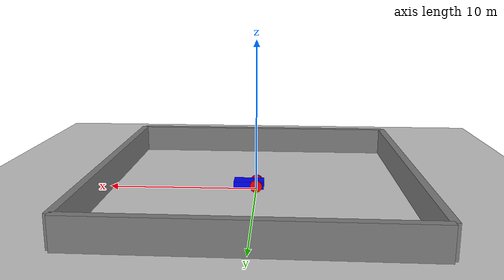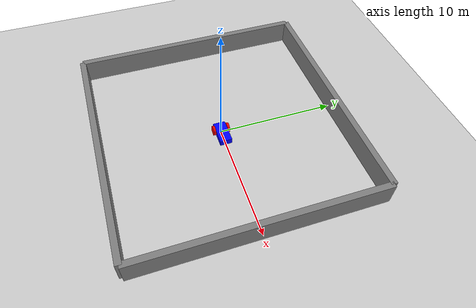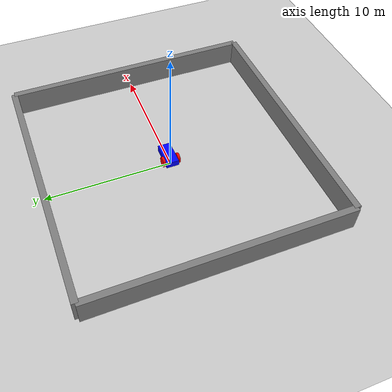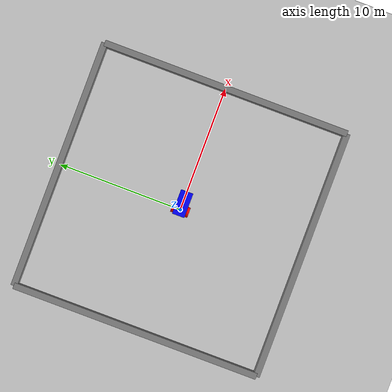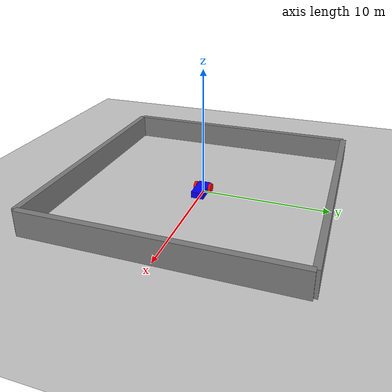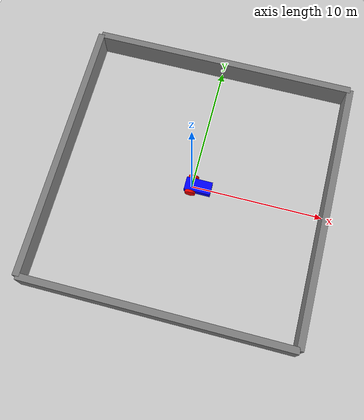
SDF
<?xml version="1.0" ?>
<sdf version="1.8">
    <!-- Define the world environment -->
    <world name="rover_world">
        <!-- Define the world's gravity -->
        <gravity>0 0 -9.81</gravity>

        <!-- Physics settings for the simulation -->
        <physics name="1ms" type="ignored">
            <max_step_size>0.001</max_step_size> <!-- Simulation step size -->
            <real_time_factor>1.0</real_time_factor> <!-- Speed relative to real-time -->
        </physics>

        <!-- Plugins to extend Gazebo functionalities -->
        <!-- Default physics engine -->
        <plugin
            filename="libignition-gazebo-physics-system.so"
            name="ignition::gazebo::systems::Physics">
        </plugin>
        <!-- User commands for controlling the simulation -->
        <plugin
            filename="libignition-gazebo-user-commands-system.so"
            name="ignition::gazebo::systems::UserCommands">
        </plugin>
        <!-- Broadcasts the scene to GUI clients -->
        <plugin
            filename="libignition-gazebo-scene-broadcaster-system.so"
            name="ignition::gazebo::systems::SceneBroadcaster">
        </plugin>

        <!-- Define a directional light (e.g., sun) -->
        <light type="directional" name="sun">
            <!-- Enable shadow casting -->
            <cast_shadows>true</cast_shadows>
            <!-- Position in the world -->
            <pose>0 0 10 0 0 0</pose>
            <!-- Light direction (mostly downward) -->
            <direction>-0.5 0.1 -0.9</direction>
            <!-- Diffuse (i.e., scattered) light -->
            <!-- Fully opaque light gray -->
            <diffuse>0.8 0.8 0.8 1</diffuse>
            <!-- Shiny highlights on reflective surfaces -->
            <!-- Fully opaque dark gray -->
            <specular>0.2 0.2 0.2 1</specular>
            <!-- Attenuation over distance -->
            <attenuation>
                <!-- Max distance light travels -->
                <range>1000</range>
                <!-- Quadratic fun of distance -->
                <!-- Light = 1 / (C + L * d + Q * d^2) -->
                <constant>0.9</constant>
                <linear>0.01</linear>
                <quadratic>0.001</quadratic>
            </attenuation>
        </light>

        <!-- Define a ground plane -->
        <model name="ground_plane">
            <static>true</static> <!-- The ground does not move -->
            <link name="link">
                <collision name="collision">
                    <geometry>
                        <plane>
                            <!-- Flat horizontal surface -->
                            <normal>0 0 1</normal>
                        </plane>
                    </geometry>
                </collision>
                <visual name="visual">
                    <geometry>
                        <plane>
                            <!-- Flat horizontal surface -->
                            <normal>0 0 1</normal>
                            <!-- Ground size -->
                            <size>100 100</size>
                        </plane>
                    </geometry>
                    <material> <!-- Ground color -->
                        <ambient>0.8 0.8 0.8 1</ambient> <!-- Base color -->
                        <diffuse>0.8 0.8 0.8 1</diffuse>
                        <specular>0.8 0.8 0.8 1</specular>
                    </material>
                </visual>
            </link>
        </model>

        <!-- Define north wall, placed at x = +10 -->
        <model name="north_wall">
            <static>true</static>
            <link name="link">
                <collision name="collision">
                    <geometry>
                        <box>
                            <size>20 0.5 2</size> <!-- Width, Depth, Height -->
                        </box>
                    </geometry>
                </collision>
                <visual name="visual">
                    <geometry>
                        <box>
                            <size>20 0.5 2</size>
                        </box>
                    </geometry>
                    <material>
                        <ambient>0.5 0.5 0.5 1</ambient>
                        <diffuse>0.5 0.5 0.5 1</diffuse>
                        <specular>0.5 0.5 0.5 1</specular>
                    </material>
                </visual>
            </link>
            <pose relative_to="world">10 0 1 0 0 1.5708</pose> <!-- Position of the wall -->
        </model>

        <!-- Define south wall, placed at x = -10 -->
        <model name="south_wall">
            <static>true</static>
            <link name="link">
                <collision name="collision">
                    <geometry>
                        <box>
                            <size>20 0.5 2</size> <!-- Width, Depth, Height -->
                        </box>
                    </geometry>
                </collision>
                <visual name="visual">
                    <geometry>
                        <box>
                            <size>20 0.5 2</size>
                        </box>
                    </geometry>
                    <material>
                        <ambient>0.5 0.5 0.5 1</ambient>
                        <diffuse>0.5 0.5 0.5 1</diffuse>
                        <specular>0.5 0.5 0.5 1</specular>
                    </material>
                </visual>
            </link>
            <pose relative_to="world">-10 0 1 0 0 1.5708</pose> <!-- Position of the wall -->
        </model>

        <!-- Define east wall, placed at y = +10 -->
        <model name="east_wall">
            <static>true</static>
            <link name="link">
                <collision name="collision">
                    <geometry>
                        <box>
                            <size>20 0.5 2</size> <!-- Width, Depth, Height -->
                        </box>
                    </geometry>
                </collision>
                <visual name="visual">
                    <geometry>
                        <box>
                            <size>20 0.5 2</size>
                        </box>
                    </geometry>
                    <material>
                        <ambient>0.5 0.5 0.5 1</ambient>
                        <diffuse>0.5 0.5 0.5 1</diffuse>
                        <specular>0.5 0.5 0.5 1</specular>
                    </material>
                </visual>
            </link>
            <pose relative_to="world">0 10 1 0 0 0</pose> <!-- Position of the wall -->
        </model>

        <!-- Define west wall, placed at y = -10 -->
        <model name="west_wall">
            <static>true</static>
            <link name="link">
                <collision name="collision">
                    <geometry>
                        <box>
                            <size>20 0.5 2</size> <!-- Width, Depth, Height -->
                        </box>
                    </geometry>
                </collision>
                <visual name="visual">
                    <geometry>
                        <box>
                            <size>20 0.5 2</size>
                        </box>
                    </geometry>
                    <material>
                        <ambient>0.5 0.5 0.5 1</ambient>
                        <diffuse>0.5 0.5 0.5 1</diffuse>
                        <specular>0.5 0.5 0.5 1</specular>
                    </material>
                </visual>
            </link>
            <pose relative_to="world">0 -10 1 0 0 0</pose> <!-- Position of the wall -->
        </model>

        <!-- Define a simple rover model -->
        <model name='rover_blue' canonical_link='chassis'>
            <!-- Position of the rover in the world -->
            <pose relative_to='world'>0 0 0 0 0 0</pose>

            <!-- Chassis (main body) of the rover -->
            <link name='chassis'>
                <pose relative_to='__model__'>0.5 0 0.4 0 0 0</pose>

                <!-- Inertial properties for physics simulation -->
                <inertial>
                    <mass>1.14395</mass>
                    <inertia>
                        <ixx>0.095329</ixx>
                        <ixy>0</ixy>
                        <ixz>0</ixz>
                        <iyy>0.381317</iyy>
                        <iyz>0</iyz>
                        <izz>0.476646</izz>
                    </inertia>
                </inertial>

                <!-- Visual representation of the chassis -->
                <visual name='visual'>
                    <geometry>
                        <box>
                            <!-- Chassis dimensions -->
                            <size>2.0 1.0 0.5</size>
                        </box>
                    </geometry>
                    <material> <!-- Color of the chassis (Blue) -->
                        <ambient>0.0 0.0 1.0 1</ambient>
                        <diffuse>0.0 0.0 1.0 1</diffuse>
                        <specular>0.0 0.0 1.0 1</specular>
                    </material>
                </visual>

                <!-- Collision properties for physics simulation -->
                <collision name='collision'>
                    <geometry>
                        <box>
                            <!-- Same size as visual -->
                            <size>2.0 1.0 0.5</size>
                        </box>
                    </geometry>
                </collision>
            </link>

            <!-- The left wheel link: -->
            <link name='left_wheel'>
                <!-- Back (-x) and left (+y) position -->
                <!-- The wheel is a cylinder rotated 90 deg
                around the Roll axis -->
                <pose relative_to="chassis">
                    -0.5 0.6 0 -1.5707 0 0</pose>
                <inertial>
                    <mass>1</mass>
                    <inertia>
                        <ixx>0.043333</ixx>
                        <ixy>0</ixy>
                        <ixz>0</ixz>
                        <iyy>0.043333</iyy>
                        <iyz>0</iyz>
                        <izz>0.08</izz>
                    </inertia>
                </inertial>
                <visual name='visual'>
                    <geometry>
                        <cylinder>
                            <radius>0.4</radius>
                            <length>0.2</length>
                        </cylinder>
                    </geometry>
                    <material>
                        <!-- Red -->
                        <ambient>1.0 0.0 0.0 1</ambient>
                        <diffuse>1.0 0.0 0.0 1</diffuse>
                        <specular>1.0 0.0 0.0 1</specular>
                    </material>
                </visual>
                <collision name='collision'>
                <!-- Same as visual -->
                    <geometry>
                        <cylinder>
                            <radius>0.4</radius>
                            <length>0.2</length>
                        </cylinder>
                    </geometry>
                </collision>
            </link>

            <!--The right wheel is the same as the left wheel
            but with different position-->
            <link name='right_wheel'>
                <!-- Back (-x) and right (-y) position -->
                <pose relative_to="chassis"> -0.5 -0.6 0 -1.5707 0 0</pose>
                <inertial>
                    <mass>1</mass>
                    <inertia>
                        <ixx>0.043333</ixx>
                        <ixy>0</ixy>
                        <ixz>0</ixz>
                        <iyy>0.043333</iyy>
                        <iyz>0</iyz>
                        <izz>0.08</izz>
                    </inertia>
                </inertial>
                <visual name='visual'>
                    <geometry>
                        <cylinder>
                            <radius>0.4</radius>
                            <length>0.2</length>
                        </cylinder>
                    </geometry>
                    <material>
                        <ambient>1.0 0.0 0.0 1</ambient>
                        <diffuse>1.0 0.0 0.0 1</diffuse>
                        <specular>1.0 0.0 0.0 1</specular>
                    </material>
                </visual>
                <collision name='collision'>
                    <geometry>
                        <cylinder>
                            <radius>0.4</radius>
                            <length>0.2</length>
                        </cylinder>
                    </geometry>
                </collision>
            </link>

            <!-- For convenience, we define a new frame
            for the caster wheel -->
            <frame name="caster_frame" attached_to='chassis'>
                <!-- Front (+x) and below (-z) -->
                <pose>0.8 0 -0.2 0 0 0</pose>
            </frame>
            <!--caster wheel-->
            <link name='caster'>
                <pose relative_to='caster_frame'/>
                <inertial>
                    <mass>1</mass>
                    <inertia>
                        <ixx>0.016</ixx>
                        <ixy>0</ixy>
                        <ixz>0</ixz>
                        <iyy>0.016</iyy>
                        <iyz>0</iyz>
                        <izz>0.016</izz>
                    </inertia>
                </inertial>
                <visual name='visual'>
                    <geometry>
                        <!-- Note: the caster wheel is a sphere,
                        not a cylinder -->
                        <sphere>
                            <radius>0.2</radius>
                        </sphere>
                    </geometry>
                    <material>
                        <ambient>0.0 1 0.0 1</ambient>
                        <diffuse>0.0 1 0.0 1</diffuse>
                        <specular>0.0 1 0.0 1</specular>
                    </material>
                </visual>
                <collision name='collision'>
                    <geometry>
                        <sphere>
                            <radius>0.2</radius>
                        </sphere>
                    </geometry>
                </collision>
            </link>

            <joint name='left_wheel_joint' type='revolute'>
                <pose relative_to='left_wheel'/>
                <parent>chassis</parent>
                <child>left_wheel</child>
                <axis>
                    <!--can be defined as any frame or even
                    arbitrary frames-->
                    <xyz expressed_in='__model__'>0 1 0</xyz>
                    <limit>
                        <!--negative infinity-->
                        <lower>-1.79769e+308</lower>
                        <!--positive infinity-->
                        <upper>1.79769e+308</upper>
                    </limit>
                </axis>
            </joint>

            <joint name='right_wheel_joint' type='revolute'>
                <pose relative_to='right_wheel'/>
                <parent>chassis</parent>
                <child>right_wheel</child>
                <axis>
                    <xyz expressed_in='__model__'>0 1 0</xyz>
                    <limit>
                        <!--negative infinity-->
                        <lower>-1.79769e+308</lower>
                        <!--positive infinity-->
                        <upper>1.79769e+308</upper>
                    </limit>
                </axis>
            </joint>

            <joint name='caster_wheel' type='ball'>
                <parent>chassis</parent>
                <child>caster</child>
            </joint>

            <plugin
                filename="libignition-gazebo-diff-drive-system.so"
                name="ignition::gazebo::systems::DiffDrive">
                <left_joint>left_wheel_joint</left_joint>
                <right_joint>right_wheel_joint</right_joint>
                <wheel_separation>1.2</wheel_separation> <!-- (-0.6 to 0.6) -->
                <wheel_radius>0.4</wheel_radius>       <!-- Cylinder radius -->
                <odom_publish_frequency>1</odom_publish_frequency>
                <topic>rover_blue_cmd_vel</topic>
            </plugin>

            <plugin
                filename="libignition-gazebo-pose-publisher-system.so"
                name="ignition::gazebo::systems::PosePublisher">
                <publish_link_pose>false</publish_link_pose> <!-- Don't publish link pose -->
                <publish_nested_model_pose>true</publish_nested_model_pose> <!-- Publish nested model pose -->
                <update_frequency>1</update_frequency>
            </plugin>

        </model>
    </world>
</sdf>
